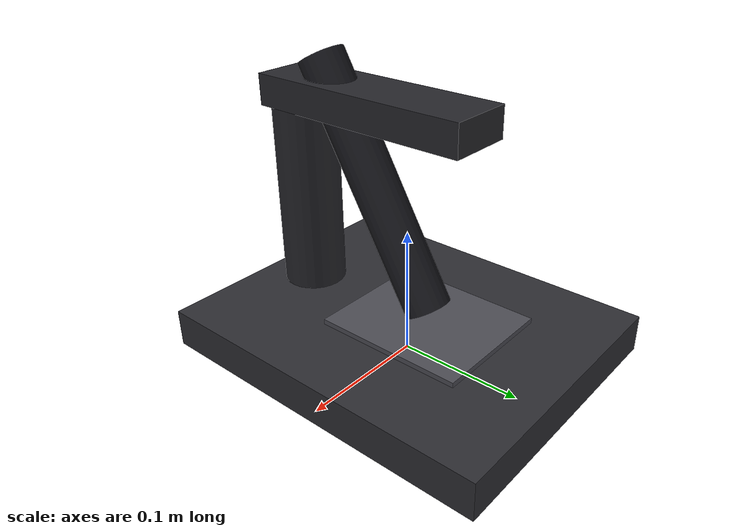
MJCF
<?xml version="1.0" encoding="utf-8"?>
<mujoco model="real_lab_lancaster_university_confocal">
  <compiler angle="radian" autolimits="true"/>
  <default>
    <default class="body"><geom contype="1" conaffinity="1"/></default>
  </default>
  <worldbody>
    <body name="base">
      <geom type="box" size="0.11 0.14 0.015" pos="0 0 0.015" rgba="0.18 0.18 0.2 1" class="body"/>
      <geom type="cylinder" size="0.025 0.09" pos="0.0 -0.1 0.105" rgba="0.15 0.15 0.17 1" class="body"/>
      <geom type="box" size="0.025 0.09 0.012" pos="0.0 -0.03 0.19" rgba="0.15 0.15 0.17 1" class="body"/>
      <geom type="box" size="0.05 0.06 0.004" pos="0.0 0.02 0.03" rgba="0.3 0.3 0.33 1" class="body"/>
      <body name="focus_stage" pos="0.0 -0.03 0.19">
        <joint name="focus_stage_joint" type="slide" axis="0 0 1" range="-0.02 0.02" damping="1.0" frictionloss="0.5"/>
  <geom type="cylinder" size="0.018 0.1" pos="0 0 -0.06" rgba="0.1 0.1 0.12 1" class="body" quat="0.966 0.259 0 0"/>
      </body>
    </body>
  </worldbody>
</mujoco>
